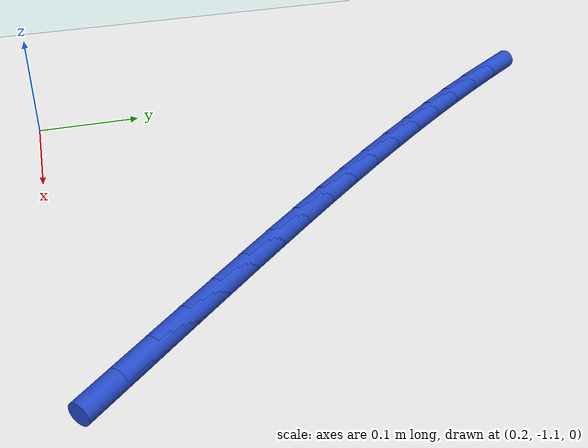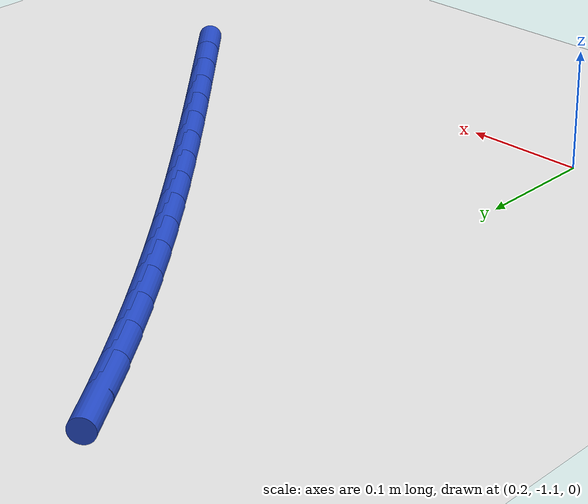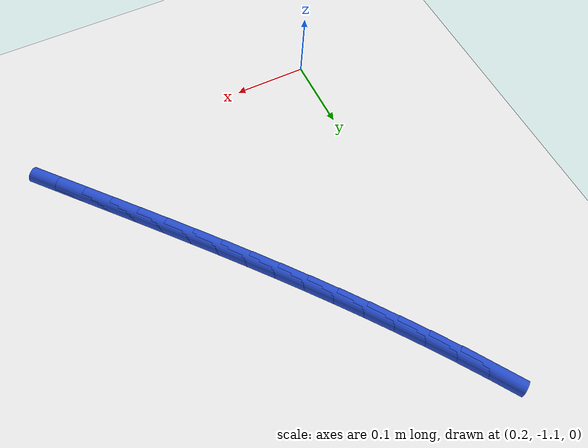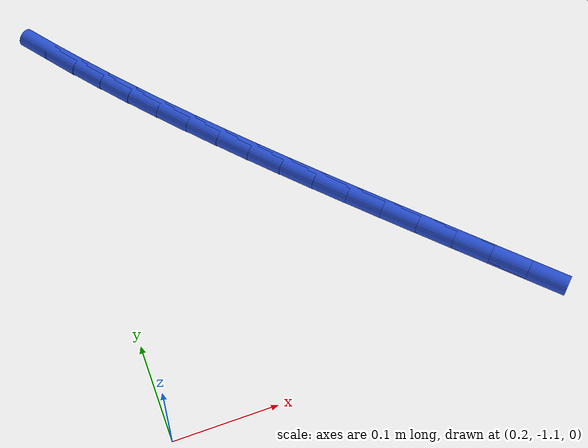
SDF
<sdf version="1.6">
 <world name="default">
  <model name="ground_plane">
   <static>1</static>
   <link name="link">
    <collision name="collision">
     <geometry><plane><normal>0 0 1</normal><size>100 100</size></plane></geometry>
     <surface><friction><ode><mu>100</mu><mu2>50</mu2></ode></friction></surface>
    </collision>
    <visual name="visual">
     <cast_shadows>0</cast_shadows>
     <geometry><plane><normal>0 0 1</normal><size>100 100</size></plane></geometry>
     <material>
      <script><uri>file://media/materials/scripts/gazebo.material</uri><name>Gazebo/WhiteGlow</name></script>
     </material>
    </visual>
   </link>
  </model>
  <model name="line">
   <link name="link_158">
    <pose>0.5762974488040005 -1.0554683788024128 0.01 0 1.57 -0.839472015680851</pose>
    <collision name="collision">
     <geometry><cylinder><radius>0.01</radius><length>0.08</length></cylinder></geometry>
    </collision>
    <visual name="visual">
     <material>
      <script><name>Gazebo/Blue</name><uri>file://media/materials/scripts/gazebo.material</uri></script>
     </material>
     <geometry><cylinder><radius>0.01</radius><length>0.08</length></cylinder></geometry>
    </visual>
   </link>
   <link name="link_159">
    <pose>0.5501643128837554 -1.026344359996067 0.01 0 1.57 -0.8397861449235071</pose>
    <collision name="collision">
     <geometry><cylinder><radius>0.01</radius><length>0.08</length></cylinder></geometry>
    </collision>
    <visual name="visual">
     <material>
      <script><name>Gazebo/Blue</name><uri>file://media/materials/scripts/gazebo.material</uri></script>
     </material>
     <geometry><cylinder><radius>0.01</radius><length>0.08</length></cylinder></geometry>
    </visual>
   </link>
   <link name="link_160">
    <pose>0.5241544143575935 -0.9973393582854292 0.01 0 1.57 -0.8413368086891031</pose>
    <collision name="collision">
     <geometry><cylinder><radius>0.01</radius><length>0.08</length></cylinder></geometry>
    </collision>
    <visual name="visual">
     <material>
      <script><name>Gazebo/Blue</name><uri>file://media/materials/scripts/gazebo.material</uri></script>
     </material>
     <geometry><cylinder><radius>0.01</radius><length>0.08</length></cylinder></geometry>
    </visual>
   </link>
   <link name="link_161">
    <pose>0.4982940404597244 -0.9684109747846594 0.01 0 1.57 -0.8441373491518</pose>
    <collision name="collision">
     <geometry><cylinder><radius>0.01</radius><length>0.08</length></cylinder></geometry>
    </collision>
    <visual name="visual">
     <material>
      <script><name>Gazebo/Blue</name><uri>file://media/materials/scripts/gazebo.material</uri></script>
     </material>
     <geometry><cylinder><radius>0.01</radius><length>0.08</length></cylinder></geometry>
    </visual>
   </link>
   <link name="link_162">
    <pose>0.4726094784243576 -0.9395168106079181 0.01 0 1.57 -0.8481984923505158</pose>
    <collision name="collision">
     <geometry><cylinder><radius>0.01</radius><length>0.08</length></cylinder></geometry>
    </collision>
    <visual name="visual">
     <material>
      <script><name>Gazebo/Blue</name><uri>file://media/materials/scripts/gazebo.material</uri></script>
     </material>
     <geometry><cylinder><radius>0.01</radius><length>0.08</length></cylinder></geometry>
    </visual>
   </link>
   <link name="link_163">
    <pose>0.44712701548570194 -0.9106144668693654 0.01 0 1.57 -0.8535281267179559</pose>
    <collision name="collision">
     <geometry><cylinder><radius>0.01</radius><length>0.08</length></cylinder></geometry>
    </collision>
    <visual name="visual">
     <material>
      <script><name>Gazebo/Blue</name><uri>file://media/materials/scripts/gazebo.material</uri></script>
     </material>
     <geometry><cylinder><radius>0.01</radius><length>0.08</length></cylinder></geometry>
    </visual>
   </link>
   <link name="link_164">
    <pose>0.42187293887796656 -0.8816615446831614 0.01 0 1.57 -0.8601310310030186</pose>
    <collision name="collision">
     <geometry><cylinder><radius>0.01</radius><length>0.08</length></cylinder></geometry>
    </collision>
    <visual name="visual">
     <material>
      <script><name>Gazebo/Blue</name><uri>file://media/materials/scripts/gazebo.material</uri></script>
     </material>
     <geometry><cylinder><radius>0.01</radius><length>0.08</length></cylinder></geometry>
    </visual>
   </link>
   <link name="link_165">
    <pose>0.3968735358353606 -0.8526156451634658 0.01 0 1.57 -0.8680085530830071</pose>
    <collision name="collision">
     <geometry><cylinder><radius>0.01</radius><length>0.08</length></cylinder></geometry>
    </collision>
    <visual name="visual">
     <material>
      <script><name>Gazebo/Blue</name><uri>file://media/materials/scripts/gazebo.material</uri></script>
     </material>
     <geometry><cylinder><radius>0.01</radius><length>0.08</length></cylinder></geometry>
    </visual>
   </link>
   <link name="link_166">
    <pose>0.3721550935920939 -0.8234343694244396 0.01 0 1.57 -0.8771582435042624</pose>
    <collision name="collision">
     <geometry><cylinder><radius>0.01</radius><length>0.08</length></cylinder></geometry>
    </collision>
    <visual name="visual">
     <material>
      <script><name>Gazebo/Blue</name><uri>file://media/materials/scripts/gazebo.material</uri></script>
     </material>
     <geometry><cylinder><radius>0.01</radius><length>0.08</length></cylinder></geometry>
    </visual>
   </link>
   <link name="link_167">
    <pose>0.3477438993823743 -0.7940753185802415 0.01 0 1.57 -0.887573450267242</pose>
    <collision name="collision">
     <geometry><cylinder><radius>0.01</radius><length>0.08</length></cylinder></geometry>
    </collision>
    <visual name="visual">
     <material>
      <script><name>Gazebo/Blue</name><uri>file://media/materials/scripts/gazebo.material</uri></script>
     </material>
     <geometry><cylinder><radius>0.01</radius><length>0.08</length></cylinder></geometry>
    </visual>
   </link>
   <link name="link_168">
    <pose>0.3236662404404117 -0.7644960937450325 0.01 0 1.57 -0.8992428843571287</pose>
    <collision name="collision">
     <geometry><cylinder><radius>0.01</radius><length>0.08</length></cylinder></geometry>
    </collision>
    <visual name="visual">
     <material>
      <script><name>Gazebo/Blue</name><uri>file://media/materials/scripts/gazebo.material</uri></script>
     </material>
     <geometry><cylinder><radius>0.01</radius><length>0.08</length></cylinder></geometry>
    </visual>
   </link>
   <link name="link_169">
    <pose>0.29994840400041517 -0.7346542960329723 0.01 0 1.57 -0.9121501687421678</pose>
    <collision name="collision">
     <geometry><cylinder><radius>0.01</radius><length>0.08</length></cylinder></geometry>
    </collision>
    <visual name="visual">
     <material>
      <script><name>Gazebo/Blue</name><uri>file://media/materials/scripts/gazebo.material</uri></script>
     </material>
     <geometry><cylinder><radius>0.01</radius><length>0.08</length></cylinder></geometry>
    </visual>
   </link>
   <link name="link_170">
    <pose>0.27661667729659367 -0.7045075265582211 0.01 0 1.57 -0.9262733868945465</pose>
    <collision name="collision">
     <geometry><cylinder><radius>0.01</radius><length>0.08</length></cylinder></geometry>
    </collision>
    <visual name="visual">
     <material>
      <script><name>Gazebo/Blue</name><uri>file://media/materials/scripts/gazebo.material</uri></script>
     </material>
     <geometry><cylinder><radius>0.01</radius><length>0.08</length></cylinder></geometry>
    </visual>
   </link>
   <link name="link_171">
    <pose>0.2536973475631566 -0.6740133864349392 0.01 0 1.57 -0.94158465014597</pose>
    <collision name="collision">
     <geometry><cylinder><radius>0.01</radius><length>0.08</length></cylinder></geometry>
    </collision>
    <visual name="visual">
     <material>
      <script><name>Gazebo/Blue</name><uri>file://media/materials/scripts/gazebo.material</uri></script>
     </material>
     <geometry><cylinder><radius>0.01</radius><length>0.08</length></cylinder></geometry>
    </visual>
   </link>
   <link name="link_172">
    <pose>0.2312167020343133 -0.643129476777287 0.01 0 1.57 -0.9580498304881618</pose>
    <collision name="collision">
     <geometry><cylinder><radius>0.01</radius><length>0.08</length></cylinder></geometry>
    </collision>
    <visual name="visual">
     <material>
      <script><name>Gazebo/Blue</name><uri>file://media/materials/scripts/gazebo.material</uri></script>
     </material>
     <geometry><cylinder><radius>0.01</radius><length>0.08</length></cylinder></geometry>
    </visual>
   </link>
   <link name="link_173">
    <pose>0.20920103431206885 -0.6118133994793918 0.01 0 1.57 -0.9759837258613449</pose>
    <collision name="collision">
     <geometry><cylinder><radius>0.01</radius><length>0.08</length></cylinder></geometry>
    </collision>
    <visual name="visual">
     <material>
      <script><name>Gazebo/Blue</name><uri>file://media/materials/scripts/gazebo.material</uri></script>
     </material>
     <geometry><cylinder><radius>0.01</radius><length>0.08</length></cylinder></geometry>
    </visual>
   </link>
  </model>
 </world>
</sdf>
